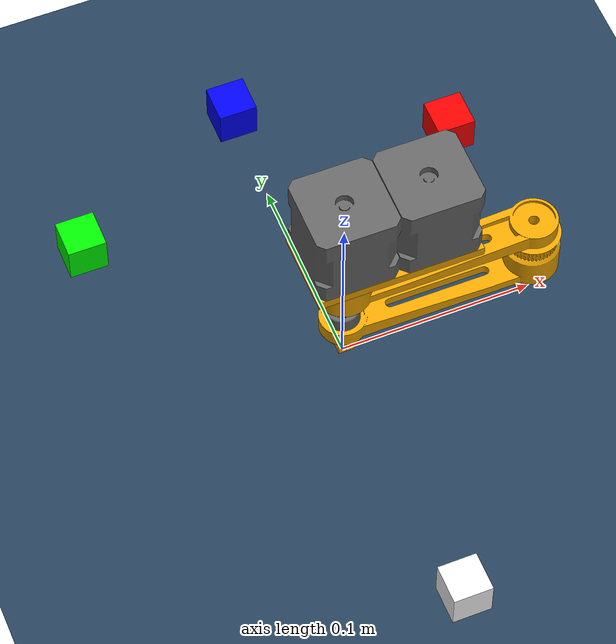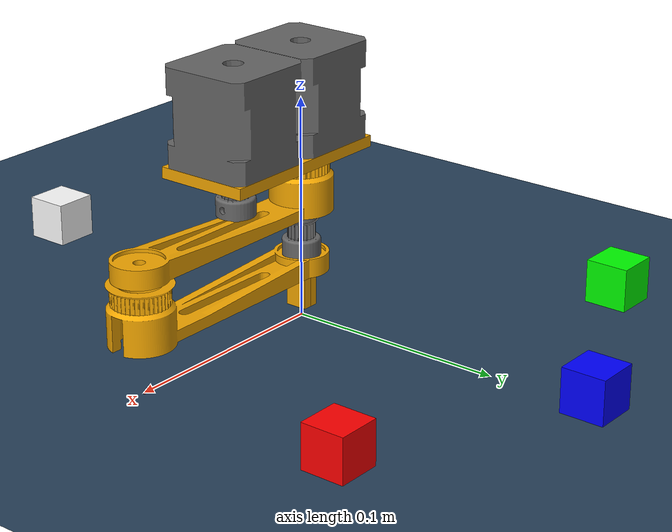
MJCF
<mujoco>

  <compiler angle="degree" />
  <option gravity="0 0 -9.81" />

  <visual>
    <headlight diffuse="0.6 0.6 0.6" ambient="0.3 0.3 0.3" specular="0 0 0"/>
    <rgba haze="0.15 0.25 0.35 1"/>
    <global azimuth="60" elevation="-20"/>
  </visual>

  <asset>
    <texture type="skybox" builtin="gradient" rgb1="0.3 0.5 0.7" rgb2="0 0 0" width="512" height="3072"/>
    <texture type="2d" name="groundplane" builtin="checker" mark="edge" rgb1="0.2 0.3 0.4" rgb2="0.1 0.2 0.3"
      markrgb="0.2 0.3 0.4" width="300" height="300"/>
    <material name="groundplane" texture="groundplane" texuniform="true" texrepeat="10 10" reflectance="0.3"/>
  </asset>

  <worldbody>
    <light pos="0 0 1.5" dir="0 0 -1" directional="true"/>
    <geom name="floor" size="0 0 0.0001" type="plane" material="groundplane"/>

<body name="origin_axes" pos="0 0 0">
  <geom type="capsule" size="0.0005 0.05" rgba="1 0 0 1" fromto="0 0 0 0.1 0 0" contype="0" conaffinity="0"/>
  <geom type="capsule" size="0.0005 0.05" rgba="0 1 0 1" fromto="0 0 0 0 0.1 0" contype="0" conaffinity="0"/>
  <geom type="capsule" size="0.0005 0.05" rgba="0 0 1 1" fromto="0 0 0 0 0 0.1" contype="0" conaffinity="0"/>
</body>

<body name="box1" pos="0.1 0.1 0.01">
    <joint type="free" />
    <geom type="box" size="0.01 0.01 0.01" rgba="1 0 0 .9" mass="1.5" friction="0.1 0.01 0.01"/>
</body>

<body name="box2" pos="-0.1 0.1 0.01">
    <joint type="free" />
    <geom type="box" size="0.01 0.01 0.01" rgba="0 1 0 .9" mass="1.5" friction="0.1 0.01 0.01" />
</body>

<body name="box3" pos="0.0 0.15 0.01">
    <joint type="free" />
    <geom type="box" size="0.01 0.01 0.01" rgba="0 0 1 .9" mass="1.5" friction="0.1 0.01 0.01" />
</body>

<body name="box4" pos="0.0 -0.15 0.01">
    <joint type="free" />
    <geom type="box" size="0.01 0.01 0.01" rgba="1 1 1 .9" mass="1.5" friction="0.1 0.01 0.01"/>
</body>

  </worldbody>

<include file="robot.xml"/>

</mujoco>

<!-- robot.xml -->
<mujoco model="scara_arm">

    <worldbody>
        <!-- Root body with Z linear joint -->
        <body name="root" pos="0.0423 0 0.0">
            <!-- Z linear actuator joint -->
            <joint name="z_slide" type="slide" axis="0 0 2" limited="true" range="0 0.2" damping="1"/>

            <!-- Base body, moved inside root -->
            <body name="base" pos="0 0 0.08" euler="0 180 0">
                <geom type="mesh" mesh="steppers" rgba="0.4 0.4 0.4 1" contype="0" conaffinity="0"/>
                <geom type="mesh" mesh="base_stepper" rgba="0.95 0.65 0.0 1" contype="0" conaffinity="0"/>

                <!-- First arm -->
                <body name="arm1" pos="0.0423 0 0.03" euler="0 180 0">
                    <geom type="mesh" mesh="arm1" rgba="0.95 0.65 0.0 1" mass="5"/>
                    <joint name="joint1" type="hinge" axis="0 0 1" pos="0 0 0" damping="0.0001"/>

                    <!-- Second arm -->
                    <body name="arm2" pos="0.1 0 -0.028" euler="0 0 180">
                        <geom type="mesh" mesh="arm1" rgba="0.95 0.65 0.0 1" mass="5"/>
                        <joint name="joint2" type="hinge" axis="0 0 1" pos="0 0 0" damping="0.0001"/>

                        <!-- Gripper base and fingers -->
                        <body name="gripper_base" pos="0.1 0 0">
                            <joint name="gripper_rot" type="hinge" axis="0 0 1" damping="0.1"/>
                            <geom type="cylinder" size="0.002 0.001" rgba="0.95 0.65 0.0 1" mass="1" name="gripper_base"/>

                            <body name="left_finger" pos="-0.005 0 -0.01">
                                <joint name="left_slide" type="slide" axis="1 0 0" limited="true" range="-0.011 0" damping="0.1"/>
                                <geom type="box" size="0.002 0.005 0.007" pos="0.003 0 0" rgba="0.95 0.65 0.0 1" friction="5 0.01 0.01" mass="2.5" solimp="3 1 0.01" solref="0.01 1" condim="1" />
                            </body>

                            <body name="right_finger" pos="0.005 0 -0.01">
                                <joint name="right_slide" type="slide" axis="1 0 0" limited="true" range="0 0.011" damping="0.1"/>
                                <geom type="box" size="0.002 0.005 0.007" pos="-0.003 0 0" rgba="0.95 0.65 0.0 1" friction="5 0.01 0.01" mass="2.5" solimp="3 1 0.01" solref="0.01 1" condim="1" />
                            </body>
                        </body>
                    </body>
                </body>
            </body>
        </body>
    </worldbody>

    <asset>
        <mesh name="steppers" file="steppers.stl" scale="0.001 0.001 0.001"/>
        <mesh name="arm1" file="1st_arm.stl" scale="0.001 0.001 0.001"/>
        <mesh name="arm2" file="2d_arm.stl" scale="0.001 0.001 0.001"/>
        <mesh name="base_stepper" file="base_stepper.stl" scale="0.001 0.001 0.001"/>
    </asset>

    <equality>
        <joint name="gripper_symmetry" joint1="left_slide" joint2="right_slide" polycoef="0 -1"/>
    </equality>

    <actuator>
        <!-- Linear actuator on Z -->
        <position name="z_lift" joint="z_slide" ctrlrange="0.01 0.1" kp="30000" kv="10000" forcerange="-1000 1000"/>

        <velocity name="motor1" joint="joint1" ctrlrange="-3 3" kv="15" forcerange="-10000 10000"/>
        <velocity name="motor2" joint="joint2" ctrlrange="-3 3" kv="15" forcerange="-10000 10000"/>
        <position name="gripper_motor" joint="gripper_rot" ctrlrange="-3.14159 3.14159" kv="0.01" forcerange="-1000 1000" />
        <!-- Gripper finger actuator -->
        <motor name="gripper_open" joint="right_slide" forcerange="-10 10" ctrlrange="-10 10"/>
    </actuator>

    <sensor>
        <jointpos name="z_height" joint="z_slide"/>
        <jointpos name="angle_arm1" joint="joint1"/>
        <jointpos name="angle_arm2" joint="joint2"/>
        <jointpos name="angle_gripper" joint="gripper_rot"/>
        <jointpos name="right_slide_pos" joint="right_slide"/>
    </sensor>

</mujoco>
